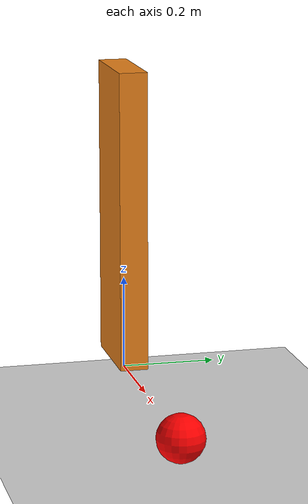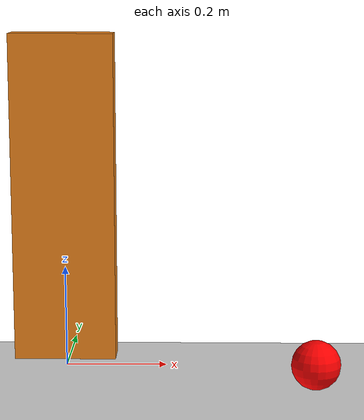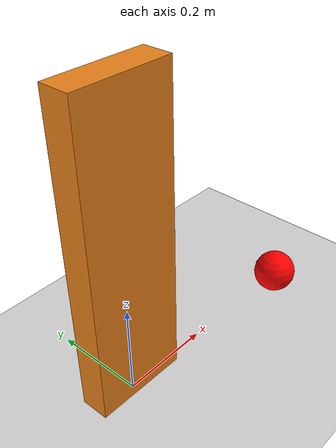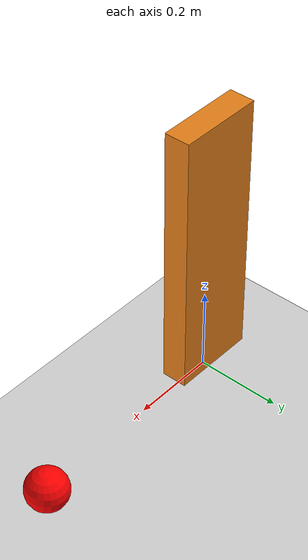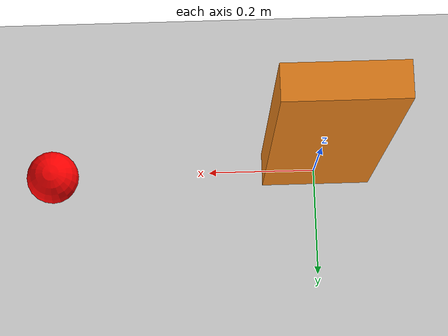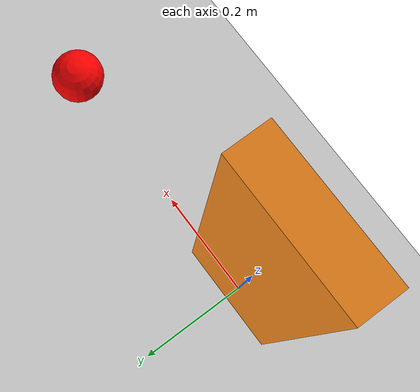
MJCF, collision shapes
<mujoco model="openarmx_bimanual">
  <compiler angle="radian" autolimits="true" meshdir="/home/robotgym/jxj/qijia-teleopvr/telegrip/telegrip/openarmx_ws/src/openarmx_description/meshes"/>
  <option integrator="implicitfast" gravity="0 0 0"/>

  <default>
    <joint armature="0.1" damping="0.5" frictionloss="0.1"/>
  </default>

  <keyframe>
    <key name="init" qpos="0 0 0 1.5708 0 0 0  0 0 0 1.5708 0 0 0"/>
  </keyframe>

  <asset>
    <texture name="blue_checker_texture" type="2d" builtin="checker"
             rgb1="0.75 0.75 0.75" rgb2="0.9 0.9 0.9" width="512" height="512"/>
    <material name="blue_checker"       texture="blue_checker_texture" texrepeat="4 4"/>
    <material name="body_material"      rgba="0.2 0.2 0.25 1.0"/>
    <material name="collision_capsule"  rgba="0.9 0.5 0.1 0.0"/>

    <!-- body mesh -->
    <mesh name="body_link0" file="body/v10/visual/body_link0.STL"/>
    <!-- arm meshes (left uses y-flip scale, right normal) -->
    <mesh name="arm_link0_L" file="arm/v10/visual/link0.stl" scale="1.0 -1.0 1.0"/>
    <mesh name="arm_link1_L" file="arm/v10/visual/link1.stl" scale="1.0 -1.0 1.0"/>
    <mesh name="arm_link2_L" file="arm/v10/visual/link2.stl" scale="1.0 -1.0 1.0"/>
    <mesh name="arm_link3_L" file="arm/v10/visual/link3.stl" scale="1.0 -1.0 1.0"/>
    <mesh name="arm_link4_L" file="arm/v10/visual/link4.stl" scale="1.0  1.0 1.0"/>
    <mesh name="arm_link5_L" file="arm/v10/visual/link5.stl" scale="1.0 -1.0 1.0"/>
    <mesh name="arm_link6_L" file="arm/v10/visual/link6.stl" scale="1.0 -1.0 1.0"/>
    <mesh name="arm_link7_L" file="arm/v10/visual/link7.stl" scale="1.0 -1.0 1.0"/>
    <mesh name="arm_link0_R" file="arm/v10/visual/link0.stl" scale="1.0  1.0 1.0"/>
    <mesh name="arm_link1_R" file="arm/v10/visual/link1.stl" scale="1.0  1.0 1.0"/>
    <mesh name="arm_link2_R" file="arm/v10/visual/link2.stl" scale="1.0  1.0 1.0"/>
    <mesh name="arm_link3_R" file="arm/v10/visual/link3.stl" scale="1.0  1.0 1.0"/>
    <mesh name="arm_link4_R" file="arm/v10/visual/link4.stl" scale="1.0  1.0 1.0"/>
    <mesh name="arm_link5_R" file="arm/v10/visual/link5.stl" scale="1.0  1.0 1.0"/>
    <mesh name="arm_link6_R" file="arm/v10/visual/link6.stl" scale="1.0  1.0 1.0"/>
    <mesh name="arm_link7_R" file="arm/v10/visual/link7.stl" scale="1.0  1.0 1.0"/>
    <!-- hand/finger meshes -->
    <mesh name="hand_mesh"     file="ee/openarmx_hand/visual/hand.stl"   scale="0.001 0.001 0.001"/>
    <mesh name="finger_mesh_L" file="ee/openarmx_hand/visual/finger.stl" scale="0.001 0.001 0.001"/>
    <mesh name="finger_mesh_R" file="ee/openarmx_hand/visual/finger.stl" scale="0.001 -0.001 0.001"/>
  </asset>

  <worldbody>
    <!-- 地面 -->
    <geom name="floor" type="plane" pos="0 0 -0.1" zaxis="0 0 1"
          size="3 3 0.01" material="blue_checker"/>

    <!-- 旧版小球障碍物：vr_oscbf_openarmx.py 仍依赖 moving_ball -->
    <body name="moving_ball" pos="0.5 0.0 0.0">
      <joint name="ball_joint_x" type="slide" axis="1 0 0" damping="0.1"/>
      <joint name="ball_joint_y" type="slide" axis="0 1 0" damping="0.1"/>
      <joint name="ball_joint_z" type="slide" axis="0 0 1" damping="0.1"/>
      <geom name="ball_geom" type="sphere" size="0.05" rgba="1 0 0 0.8" contype="1" conaffinity="1"/>
      <inertial pos="0 0 0" mass="0.1" diaginertia="0.001 0.001 0.001"/>
    </body>

    <!-- 立柱本体 mesh（固定不动） -->
    <body name="robot_body_mesh" pos="0 0 0">
      <geom type="mesh" mesh="body_link0" contype="0" conaffinity="0" rgba="0.25 0.25 0.3 1"/>
      <inertial pos="0 0 0.35" mass="0.001" diaginertia="0.001 0.001 0.001"/>
    </body>

    <!-- 本体碰撞 box（可拖动，独立于 mesh） -->
    <body name="robot_body_collision_body" pos="0 0 0">
      <joint name="body_joint_x" type="slide" axis="1 0 0" damping="5.0"/>
      <joint name="body_joint_y" type="slide" axis="0 1 0" damping="5.0"/>
      <joint name="body_joint_z" type="slide" axis="0 0 1" damping="5.0"/>
      <!-- 覆盖躯干主体，y 方向收窄确保 L构型时 link4 有足够间隙 -->
      <geom name="robot_body_collision" type="box" size="0.10 0.03 0.32" pos="0 0 0.34"
            material="collision_capsule" contype="1" conaffinity="1"/>
      <inertial pos="0 0 0.34" mass="10" diaginertia="1 1 1"/>
    </body>

    <!-- 左臂 -->
    <body name="openarmx_left_link1" pos="0 0.089 0.698" quat="0.707105 -0.707108 0 0">
      <inertial pos="0.004452 2.5e-05 0.073323" quat="0.999503 0.000644393 -0.0315003 0.00114209" mass="1.68876" diaginertia="0.00346919 0.002551 0.00190982"/>
      <joint name="openarmx_left_joint1" pos="0 0 0" axis="0 0 1" range="-3.3444 0.905604" actuatorfrcrange="-120 120"/>
      <geom type="mesh" mesh="arm_link1_L" contype="0" conaffinity="0" rgba="0.35 0.35 0.4 1"/>
      <geom type="capsule" fromto="0 0 0 0 0 0.076" size="0.04" material="collision_capsule" contype="0" conaffinity="0"/>
      <body name="openarmx_left_link2" pos="-0.0205 0 0.081" quat="0.707105 -0.707108 0 0">
        <inertial pos="-0.003787 -0.000221 0.04901" quat="0.986716 -0.00145381 -0.161354 -0.0188355" mass="0.396704" diaginertia="0.000891196 0.000821946 0.000327857"/>
        <joint name="openarmx_left_joint2" pos="0 0 0" axis="-1 0 0" range="-3.2708 0.129204" actuatorfrcrange="-120 120"/>
        <geom type="mesh" mesh="arm_link2_L" contype="0" conaffinity="0" rgba="0.35 0.35 0.4 1"/>
        <geom type="capsule" fromto="0 0 0 0.02 0 0.081" size="0.035" material="collision_capsule" contype="0" conaffinity="0"/>
        <body name="openarmx_left_link3" pos="0.02 0 0.099">
          <inertial pos="-0.000828 -0.000236 0.083336" quat="0.946133 0.00530809 0.00424656 -0.323707" mass="2.49278" diaginertia="0.0103641 0.0103322 0.00300164"/>
          <joint name="openarmx_left_joint3" pos="0 0 0" axis="0 0 1" range="-1.57 1.57" actuatorfrcrange="-60 60"/>
          <geom type="mesh" mesh="arm_link3_L" contype="0" conaffinity="0" rgba="0.35 0.35 0.4 1"/>
          <geom name="openarmx_left_link3_collision" type="capsule" fromto="0 0 0 0 0.031 0.14181" size="0.04" material="collision_capsule" contype="0" conaffinity="0"/>
          <body name="openarmx_left_link4" pos="0 0.031002 0.14181">
            <inertial pos="-0.002591 -0.030135 0.07147" quat="0.999683 -0.0233783 -0.00922341 -0.00115143" mass="0.779755" diaginertia="0.00201543 0.00162187 0.000765704"/>
            <joint name="openarmx_left_joint4" pos="0 0 0" axis="0 1 0" range="0 1.8" actuatorfrcrange="-60 60"/>
            <geom type="mesh" mesh="arm_link4_L" contype="0" conaffinity="0" rgba="0.35 0.35 0.4 1"/>
            <geom name="openarmx_left_link4_collision" type="capsule" fromto="0 0 0 0 -0.031 0.126" size="0.035" material="collision_capsule" contype="0" conaffinity="0"/>
            <body name="openarmx_left_link5" pos="0 -0.0309 0.126">
              <inertial pos="-0.002256 -0.000305 0.0533" quat="0.714458 -0.0122081 -0.0110113 0.699485" mass="0.687255" diaginertia="0.00106611 0.000831256 0.000495637"/>
              <joint name="openarmx_left_joint5" pos="0 0 0" axis="0 0 1" range="-1.5 1.5" actuatorfrcrange="-14 14"/>
              <geom type="mesh" mesh="arm_link5_L" contype="0" conaffinity="0" rgba="0.35 0.35 0.4 1"/>
              <geom type="capsule" fromto="0 0 0 0.037 0 0.131" size="0.03" material="collision_capsule" contype="0" conaffinity="0"/>
              <body name="openarmx_left_link6" pos="0.037426 0 0.131">
                <inertial pos="-0.03564 0.005114 -0.003582" quat="0.945265 0.038546 0.187709 -0.26411" mass="0.384836" diaginertia="0.000317632 0.000265263 0.000212105"/>
                <joint name="openarmx_left_joint6" pos="0 0 0" axis="1 0 0" range="-0.75 0.75" actuatorfrcrange="-14 14"/>
                <geom type="mesh" mesh="arm_link6_L" contype="0" conaffinity="0" rgba="0.35 0.35 0.4 1"/>
                <geom type="capsule" fromto="0 0 0 -0.0375 0 0" size="0.03" material="collision_capsule" contype="0" conaffinity="0"/>
                <body name="openarmx_left_link7" pos="-0.0375 0 0">
                  <inertial pos="0.000153865 -0.0365798 0.0698705" quat="0.471362 0.881718 -0.0189266 0.00575458" mass="0.974972" diaginertia="0.00476254 0.00404439 0.000991057"/>
                  <joint name="openarmx_left_joint7" pos="0 0 0" axis="0 -1 0" range="-1.4 1.4" actuatorfrcrange="-14 14"/>
                  <geom type="mesh" mesh="arm_link7_L" contype="0" conaffinity="0" rgba="0.35 0.35 0.4 1"/>
                  <geom name="openarmx_left_link7_collision" type="sphere" size="0.05" material="collision_capsule" contype="0" conaffinity="0"/>
                </body>
              </body>
            </body>
          </body>
        </body>
      </body>
    </body>

    <!-- 右臂 -->
    <body name="openarmx_right_link1" pos="0 -0.089 0.698" quat="0.707105 0.707108 0 0">
      <inertial pos="0.004452 -2.5e-05 0.073323" quat="0.999503 0.000644393 -0.0315003 0.00114209" mass="1.68876" diaginertia="0.00346919 0.002551 0.00190982"/>
      <joint name="openarmx_right_joint1" pos="0 0 0" axis="0 0 1" range="-1.25 3" actuatorfrcrange="-120 120"/>
      <geom type="mesh" mesh="arm_link1_R" contype="0" conaffinity="0" rgba="0.35 0.35 0.4 1"/>
      <geom type="capsule" fromto="0 0 0 0 0 0.076" size="0.04" material="collision_capsule" contype="0" conaffinity="0"/>
      <body name="openarmx_right_link2" pos="-0.0205 0 0.081" quat="0.707105 0.707108 0 0">
        <inertial pos="-0.003787 0.000221 0.04901" quat="0.986716 -0.00145381 -0.161354 -0.0188355" mass="0.396704" diaginertia="0.000891196 0.000821946 0.000327857"/>
        <joint name="openarmx_right_joint2" pos="0 0 0" axis="-1 0 0" range="-0.129204 3.2708" actuatorfrcrange="-120 120"/>
        <geom type="mesh" mesh="arm_link2_R" contype="0" conaffinity="0" rgba="0.35 0.35 0.4 1"/>
        <geom type="capsule" fromto="0 0 0 0.02 0 0.081" size="0.035" material="collision_capsule" contype="0" conaffinity="0"/>
        <body name="openarmx_right_link3" pos="0.02 0 0.099">
          <inertial pos="-0.000828 0.000236 0.083336" quat="0.946133 0.00530809 0.00424656 -0.323707" mass="2.49278" diaginertia="0.0103641 0.0103322 0.00300164"/>
          <joint name="openarmx_right_joint3" pos="0 0 0" axis="0 0 1" range="-1.57 1.57" actuatorfrcrange="-60 60"/>
          <geom type="mesh" mesh="arm_link3_R" contype="0" conaffinity="0" rgba="0.35 0.35 0.4 1"/>
          <geom name="openarmx_right_link3_collision" type="capsule" fromto="0 0 0 0 0.031 0.14181" size="0.04" material="collision_capsule" contype="0" conaffinity="0"/>
          <body name="openarmx_right_link4" pos="0 0.031002 0.14181">
            <inertial pos="-0.002591 -0.030135 0.07147" quat="0.999683 -0.0233783 -0.00922341 -0.00115143" mass="0.779755" diaginertia="0.00201543 0.00162187 0.000765704"/>
            <joint name="openarmx_right_joint4" pos="0 0 0" axis="0 1 0" range="0 1.8" actuatorfrcrange="-60 60"/>
            <geom type="mesh" mesh="arm_link4_R" contype="0" conaffinity="0" rgba="0.35 0.35 0.4 1"/>
            <geom name="openarmx_right_link4_collision" type="capsule" fromto="0 0 0 0 -0.031 0.126" size="0.035" material="collision_capsule" contype="0" conaffinity="0"/>
            <body name="openarmx_right_link5" pos="0 -0.0309 0.126">
              <inertial pos="-0.002256 0.000305 0.0533" quat="0.714458 -0.0122081 -0.0110113 0.699485" mass="0.687255" diaginertia="0.00106611 0.000831256 0.000495637"/>
              <joint name="openarmx_right_joint5" pos="0 0 0" axis="0 0 1" range="-1.5 1.5" actuatorfrcrange="-14 14"/>
              <geom type="mesh" mesh="arm_link5_R" contype="0" conaffinity="0" rgba="0.35 0.35 0.4 1"/>
              <geom type="capsule" fromto="0 0 0 0.037 0 0.131" size="0.03" material="collision_capsule" contype="0" conaffinity="0"/>
              <body name="openarmx_right_link6" pos="0.037426 0 0.131">
                <inertial pos="-0.03564 -0.005114 -0.003582" quat="0.945265 0.038546 0.187709 -0.26411" mass="0.384836" diaginertia="0.000317632 0.000265263 0.000212105"/>
                <joint name="openarmx_right_joint6" pos="0 0 0" axis="1 0 0" range="-0.75 0.75" actuatorfrcrange="-14 14"/>
                <geom type="mesh" mesh="arm_link6_R" contype="0" conaffinity="0" rgba="0.35 0.35 0.4 1"/>
                <geom type="capsule" fromto="0 0 0 -0.0375 0 0" size="0.03" material="collision_capsule" contype="0" conaffinity="0"/>
                <body name="openarmx_right_link7" pos="-0.0375 0 0">
                  <inertial pos="0.000153865 -0.0338517 0.0698705" quat="0.480064 0.877024 -0.0182521 0.00578127" mass="0.974972" diaginertia="0.00494981 0.00422951 0.000993346"/>
                  <joint name="openarmx_right_joint7" pos="0 0 0" axis="0 1 0" range="-1.4 1.4" actuatorfrcrange="-14 14"/>
                  <geom type="mesh" mesh="arm_link7_R" contype="0" conaffinity="0" rgba="0.35 0.35 0.4 1"/>
                  <geom name="openarmx_right_link7_collision" type="sphere" size="0.05" material="collision_capsule" contype="0" conaffinity="0"/>
                </body>
              </body>
            </body>
          </body>
        </body>
      </body>
    </body>

  </worldbody>

  <actuator>
    <!-- 左臂 -->
    <motor name="left_motor_1"  joint="openarmx_left_joint1"  gear="1" ctrllimited="true" ctrlrange="-120 120"/>
    <motor name="left_motor_2"  joint="openarmx_left_joint2"  gear="1" ctrllimited="true" ctrlrange="-120 120"/>
    <motor name="left_motor_3"  joint="openarmx_left_joint3"  gear="1" ctrllimited="true" ctrlrange="-60 60"/>
    <motor name="left_motor_4"  joint="openarmx_left_joint4"  gear="1" ctrllimited="true" ctrlrange="-60 60"/>
    <motor name="left_motor_5"  joint="openarmx_left_joint5"  gear="1" ctrllimited="true" ctrlrange="-14 14"/>
    <motor name="left_motor_6"  joint="openarmx_left_joint6"  gear="1" ctrllimited="true" ctrlrange="-14 14"/>
    <motor name="left_motor_7"  joint="openarmx_left_joint7"  gear="1" ctrllimited="true" ctrlrange="-14 14"/>
    <!-- 右臂 -->
    <motor name="right_motor_1" joint="openarmx_right_joint1" gear="1" ctrllimited="true" ctrlrange="-120 120"/>
    <motor name="right_motor_2" joint="openarmx_right_joint2" gear="1" ctrllimited="true" ctrlrange="-120 120"/>
    <motor name="right_motor_3" joint="openarmx_right_joint3" gear="1" ctrllimited="true" ctrlrange="-60 60"/>
    <motor name="right_motor_4" joint="openarmx_right_joint4" gear="1" ctrllimited="true" ctrlrange="-60 60"/>
    <motor name="right_motor_5" joint="openarmx_right_joint5" gear="1" ctrllimited="true" ctrlrange="-14 14"/>
    <motor name="right_motor_6" joint="openarmx_right_joint6" gear="1" ctrllimited="true" ctrlrange="-14 14"/>
    <motor name="right_motor_7" joint="openarmx_right_joint7" gear="1" ctrllimited="true" ctrlrange="-14 14"/>
  </actuator>

</mujoco>
